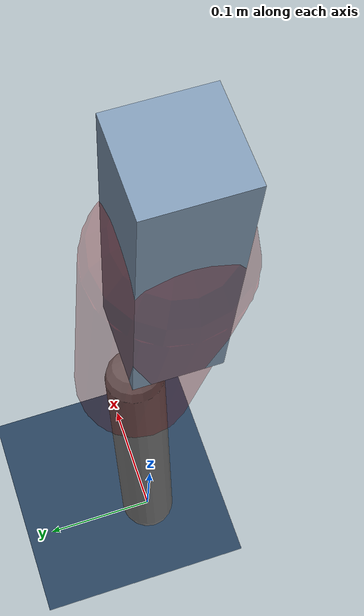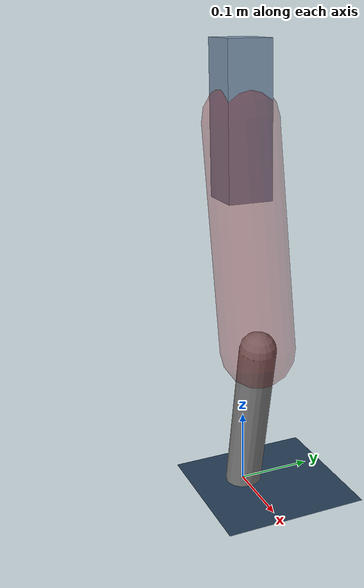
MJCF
<mujoco model="Hopper2D">
	<compiler inertiafromgeom="true" angle="radian" />
	<option timestep="0.001" integrator="implicit" cone="elliptic" solver="Newton" tolerance="1e-10" />

	<default>
		<geom contype="1" conaffinity="1" condim="3" friction="2 0.005 0.0001" solref="0.005 1" />
		<joint limited="true" damping="0.1" />
	</default>

	<asset>
		<texture name="skybox" type="skybox" builtin="gradient" rgb1=".4 .6 .8" rgb2="0 0 0" width="800" height="800" />
		<texture name="grid" type="2d" builtin="checker" rgb1=".1 .2 .3" rgb2=".2 .3 .4" width="300" height="300" mark="edge" markrgb=".2 .3 .4" />
		<material name="ground" texture="grid" texrepeat="1 1" texuniform="true" reflectance="0.1" />
		<material name="leg" rgba="0.5 0.6 0.7 1" />
	</asset>

	<worldbody>

		<geom name="floor" type="plane" size="5 5 0.25" material="ground" />

		<light directional="false" diffuse="0.8 0.8 0.8" specular="0.3 0.3 0.3" pos="0 0 2" dir="0 0 -1" />
		<light mode="targetbodycom" target="base" directional="false" diffuse="0.8 0.8 0.8" specular="0.3 0.3 0.3" pos="0 0 2" dir="0 0 -1" />

		<camera name="fixed" pos="0 -2 1" xyaxes="1 0 0 0 0 1" />
		<camera name="tracking" mode="trackcom" pos="0 -3 1" />

		<body name="root" pos="0 0 0.5093289487086451">
			<joint name="slide_x" type="slide" axis="1 0 0" range="-100 100" />
			<joint name="slide_z" type="slide" axis="0 0 1" range="0 10" />

			<body name="base" pos="0 0 0">
				<geom name="torso" type="box" size="0.03 0.03 0.1" mass="2.241" material="leg" />

				<body name="link1" pos="0 0 0" euler="0 1.4009715409216246 0">
					<joint type="hinge" axis="0 -1 0" pos="0 0 0" name="hinge1" limited="true" range="-3.14 3.14" stiffness="0" damping="0.1" />
					<geom name="thigh" type="capsule" fromto="0 0 0 0.2968366116125546 0 0" size="0.05" rgba="0.5 0 0 0.3" mass="0.9801588513538975" />

					<body name="link2" pos="0.2968366116125546 0 0" euler="0 0.39726362840706325 0">
						<joint type="hinge" axis="0 -1 0" pos="0 0 0" name="hinge2" limited="true" range="-3.14 3.14" stiffness="0" damping="0.1" />
						<geom name="shank" type="capsule" fromto="0 0 0 0.22249233709609048 0 0" size="0.025" mass="0.41974310338648146" />

					</body>
				</body>
			</body>
		</body>
	</worldbody>

	<actuator>
		<motor name="torque1" joint="hinge1" ctrlrange="-49.763099458697084 49.763099458697084" ctrllimited="true" gear="1" />
		<motor name="torque2" joint="hinge2" ctrlrange="-32.093726794457616 32.093726794457616" ctrllimited="true" gear="1" />
	</actuator>
</mujoco>
